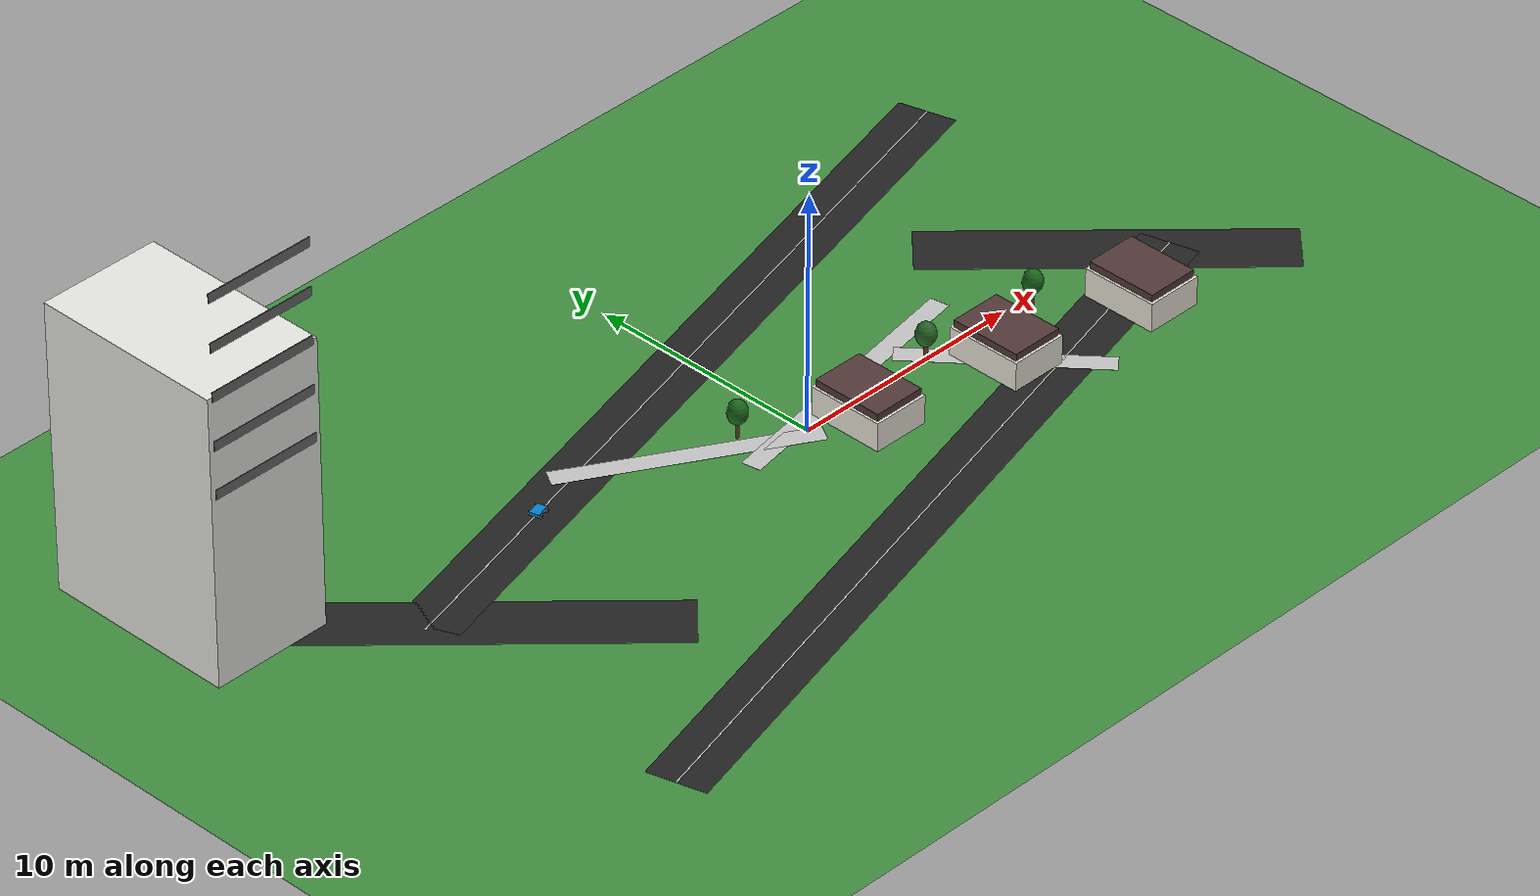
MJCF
<mujoco model="China_Residential_Estate_Estates">
  <compiler angle="degree" coordinate="local"/>

  <option timestep="0.01" integrator="RK4"/>

  <!-- 材质与纹理定义：高精度还原图三的真实色彩 -->
  <asset>
    <texture name="sky" type="skybox" builtin="gradient" rgb1="0.4 0.6 0.8" rgb2="0.07 0.09 0.15" width="512" height="512"/>
    <!-- 沥青路面暗灰材质 -->
    <texture name="asphalt" type="2d" builtin="checker" rgb1="0.12 0.12 0.12" rgb2="0.15 0.15 0.15" width="512" height="512"/>
    <material name="road_material" texture="asphalt" texrepeat="5 5" reflectance="0.05"/>
    <!-- 人行道淡灰色花岗岩砖纹理 -->
    <texture name="paving" type="2d" builtin="checker" rgb1="0.75 0.75 0.75" rgb2="0.78 0.78 0.78" width="512" height="512"/>
    <material name="paving_material" texture="paving" texrepeat="10 10" reflectance="0.02"/>
  </asset>

  <worldbody>
    <light diffuse=".6 .6 .6" pos="0 0 20" dir="0 0 -1" directional="true"/>

    <!-- 1. 小区大面积中央绿化草坪（图三中的大草坪底座） -->
    <geom name="central_lawn" type="plane" size="30 25 0.01" rgba="0.25 0.55 0.25 1.0"/>

    <!-- 2. 斜向环形车道构建（对应图二上半部分的斜向回路，完美测试小车转向） -->

    <!-- 顶端斜向主干道（倾斜 15 度，长 36m） -->
    <geom name="road_top" type="box" pos="0 6.0 0.002" size="18 1.2 0.001" euler="0 0 15" material="road_material"/>
    <!-- 顶端道路中心虚线 -->
    <geom name="road_top_line" type="box" pos="0 6.0 0.003" size="18 0.03 0.001" euler="0 0 15" rgba="1.0 1.0 1.0 0.8"/>

    <!-- 底端平行斜车道（倾斜 15 度，长 36m） -->
    <geom name="road_bottom" type="box" pos="0 -6.0 0.002" size="18 1.2 0.001" euler="0 0 15" material="road_material"/>
    <geom name="road_bottom_line" type="box" pos="0 -6.0 0.003" size="18 0.03 0.001" euler="0 0 15" rgba="1.0 1.0 1.0 0.8"/>

    <!-- 左侧连接弯道（长 14m，旋转 -45 度闭合回路） -->
    <geom name="road_left_connector" type="box" pos="-15.5 0 0.002" size="7 1.2 0.001" euler="0 0 -45" material="road_material"/>
    <!-- 右侧连接弯道（长 14m，旋转 -45 度闭合回路） -->
    <geom name="road_right_connector" type="box" pos="15.5 0 0.002" size="7 1.2 0.001" euler="0 0 -45" material="road_material"/>

    <!-- 3. 蜿蜒人行步道构建（还原图三中弯曲铺装道路，为 XFeat 神经网络画线提供强边缘） -->
    <geom name="walkpath_1" type="box" pos="-4.0 2.0 0.003" size="5.0 0.4 0.001" euler="0 0 -30" material="paving_material"/>
    <geom name="walkpath_2" type="box" pos="3.0 1.0 0.003" size="6.0 0.4 0.001" euler="0 0 10" material="paving_material"/>
    <geom name="walkpath_3" type="box" pos="8.0 -2.0 0.003" size="4.0 0.4 0.001" euler="0 0 -50" material="paving_material"/>

    <!-- 4. 建筑群数字孪生（5栋高楼 vs 联调低矮别墅群） -->

    <!-- 🏢 左侧巨型高层住宅楼（代表你所在的 5 栋 - 20层高度视觉，浅灰色砖墙） -->
    <body name="building_5_tower" pos="-22.0 8.0 6.0">
      <geom type="box" size="2.5 4.0 6.0" rgba="0.9 0.9 0.88 1.0"/>
      <!-- 阳台侧边线条，丰富视觉垂直梯度 -->
      <geom type="box" pos="0 -4.01 2.0" size="2.3 0.02 0.2" rgba="0.4 0.4 0.4 1.0"/>
      <geom type="box" pos="0 -4.01 4.0" size="2.3 0.02 0.2" rgba="0.4 0.4 0.4 1.0"/>
      <geom type="box" pos="0 -4.01 6.0" size="2.3 0.02 0.2" rgba="0.4 0.4 0.4 1.0"/>
      <geom type="box" pos="0 -4.01 8.0" size="2.3 0.02 0.2" rgba="0.4 0.4 0.4 1.0"/>
      <geom type="box" pos="0 -4.01 10.0" size="2.3 0.02 0.2" rgba="0.4 0.4 0.4 1.0"/>
    </body>

    <!-- 🏡 内环错落有致的联排低矮别墅群（图三右侧红褐斜屋顶别墅） -->
    <!-- 别墅 1 -->
    <body name="villa_1" pos="2.0 -1.0 0.6">
      <geom type="box" size="1.2 1.6 0.6" rgba="0.92 0.9 0.85 1.0"/> <!-- 米白色主墙 -->
      <geom type="box" pos="0 0 0.75" size="1.1 1.5 0.15" rgba="0.32 0.22 0.22 1.0"/> <!-- 深褐斜坡屋顶 -->
    </body>
    <!-- 别墅 2 -->
    <body name="villa_2" pos="8.0 -2.0 0.6">
      <geom type="box" size="1.2 1.6 0.6" rgba="0.92 0.9 0.85 1.0"/>
      <geom type="box" pos="0 0 0.75" size="1.1 1.5 0.15" rgba="0.32 0.22 0.22 1.0"/>
    </body>
    <!-- 别墅 3 -->
    <body name="villa_3" pos="14.0 -3.0 0.6">
      <geom type="box" size="1.2 1.6 0.6" rgba="0.92 0.9 0.85 1.0"/>
      <geom type="box" pos="0 0 0.75" size="1.1 1.5 0.15" rgba="0.32 0.22 0.22 1.0"/>
    </body>

    <!-- 5. 植被与园林障碍物（图三中的散落绿化树木） -->
    <body name="tree_1" pos="-2.0 1.5 0.5">
      <geom type="cylinder" size="0.08 0.5" rgba="0.4 0.25 0.15 1.0"/> <!-- 树干 -->
      <geom type="ellipsoid" pos="0 0 0.6" size="0.4 0.4 0.5" rgba="0.1 0.4 0.1 0.95"/> <!-- 树冠 -->
    </body>
    <body name="tree_2" pos="6.0 0.0 0.5">
      <geom type="cylinder" size="0.08 0.5" rgba="0.4 0.25 0.15 1.0"/>
      <geom type="ellipsoid" pos="0 0 0.6" size="0.4 0.4 0.5" rgba="0.15 0.4 0.15 0.95"/>
    </body>
    <body name="tree_3" pos="11.0 -0.5 0.5">
      <geom type="cylinder" size="0.08 0.5" rgba="0.4 0.25 0.15 1.0"/>
      <geom type="ellipsoid" pos="0 0 0.6" size="0.4 0.4 0.5" rgba="0.1 0.4 0.1 0.95"/>
    </body>

    <!-- 6. Scout Mini 差速控制底盘（车体方向与斜向车道完美平行倾斜 15 度） -->
    <body name="car" pos="-10.0 3.32 0.12" euler="0 0 15">
      <freejoint/>
      <!-- 车身底盘 -->
      <geom name="chassis" type="box" size="0.3 0.2 0.06" rgba="0.0 0.5 0.8 1.0"/>

      <!-- 🛡️ 注入虚拟摄像头：视场 70 度，笔直朝向小车车头前方 -->
      <camera name="front_camera" pos="0.3 0.0 0.08" xyaxes="0 -1 0 0 0 1" fovy="70"/>

      <!-- 左前轮 -->
      <body name="wheel_lf" pos="0.2 0.22 -0.04">
        <joint name="hinge_lf" type="hinge" axis="0 1 0" damping="0.05"/>
        <geom type="cylinder" size="0.08 0.04" zaxis="0 1 0" rgba="0.1 0.1 0.1 1.0" friction="1.5 0.01 0.001"/>
      </body>
      <!-- 右前轮 -->
      <body name="wheel_rf" pos="0.2 -0.22 -0.04">
        <joint name="hinge_rf" type="hinge" axis="0 1 0" damping="0.05"/>
        <geom type="cylinder" size="0.08 0.04" zaxis="0 1 0" rgba="0.1 0.1 0.1 1.0" friction="1.5 0.01 0.001"/>
      </body>
      <!-- 左后轮 -->
      <body name="wheel_lr" pos="-0.2 0.22 -0.04">
        <joint name="hinge_lr" type="hinge" axis="0 1 0" damping="0.05"/>
        <geom type="cylinder" size="0.08 0.04" zaxis="0 1 0" rgba="0.1 0.1 0.1 1.0" friction="1.5 0.01 0.001"/>
      </body>
      <!-- 右后轮 -->
      <body name="wheel_rr" pos="-0.2 -0.22 -0.04">
        <joint name="hinge_rr" type="hinge" axis="0 1 0" damping="0.05"/>
        <geom type="cylinder" size="0.08 0.04" zaxis="0 1 0" rgba="0.1 0.1 0.1 1.0" friction="1.5 0.01 0.001"/>
      </body>
    </body >
  </worldbody>

  <!-- 执行通道：四驱速度执行器 -->
  <actuator>
    <velocity name="motor_lf" joint="hinge_lf" kv="150" forcerange="-15 15"/>
    <velocity name="motor_rf" joint="hinge_rf" kv="150" forcerange="-15 15"/>
    <velocity name="motor_lr" joint="hinge_lr" kv="150" forcerange="-15 15"/>
    <velocity name="motor_rr" joint="hinge_rr" kv="150" forcerange="-15 15"/>
  </actuator>
</mujoco>
